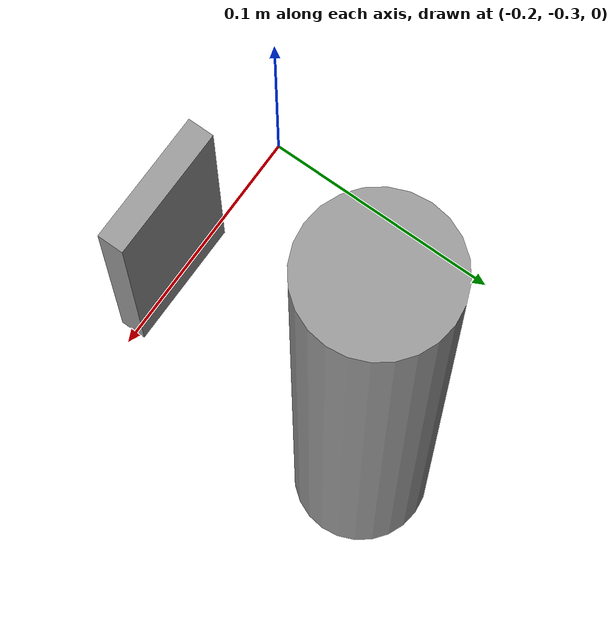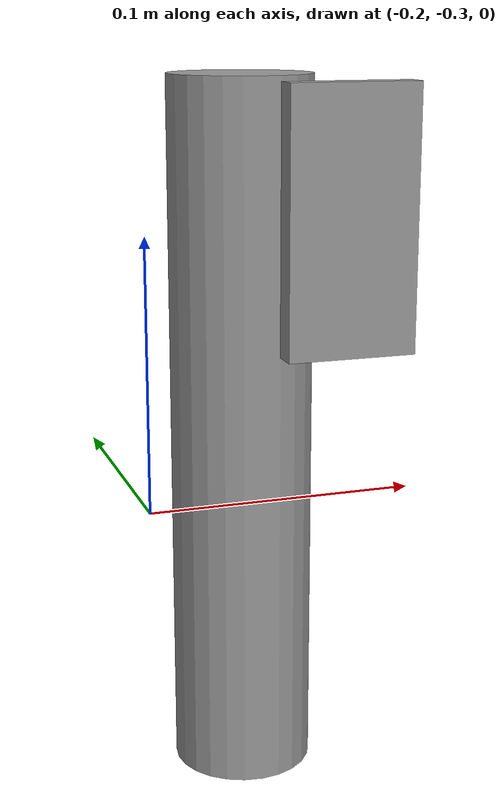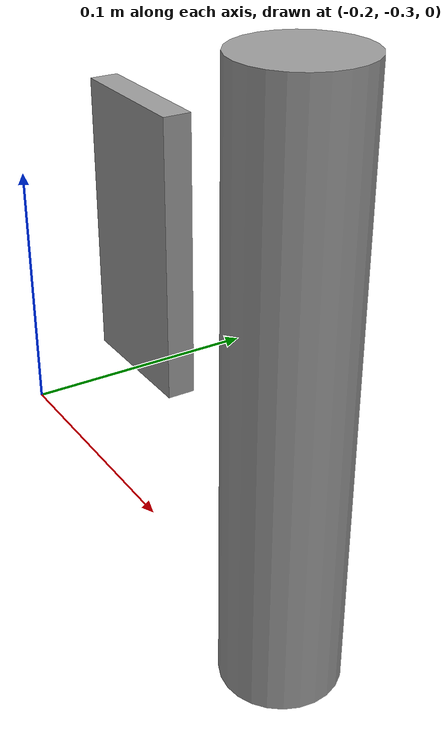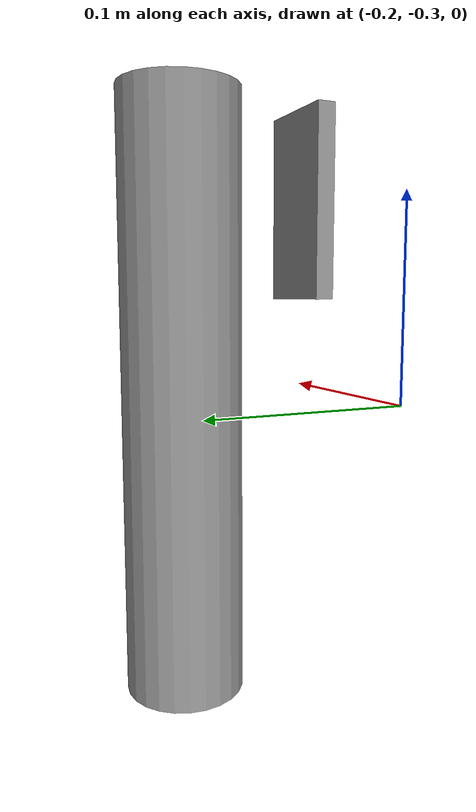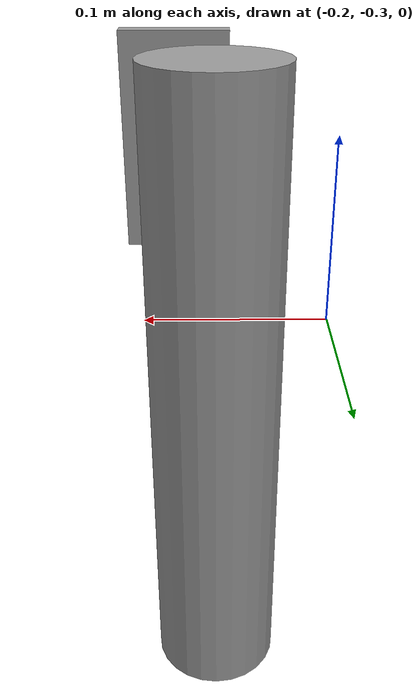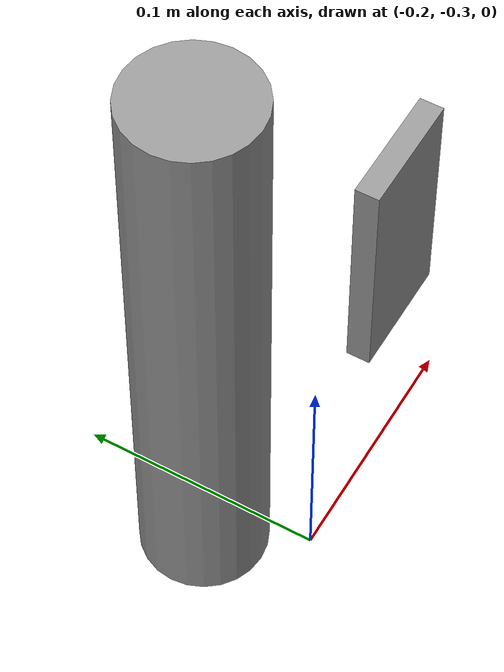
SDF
<?xml version='1.0'?>
<sdf version='1.7'>
  <model name='beacon'>
    <link name='link'>
      <inertial>
        <mass>0.04</mass>
        <inertia>
          <ixx>0.00583333</ixx>
          <ixy>0</ixy>
          <ixz>0</ixz>
          <iyy>0.00583333</iyy>
          <iyz>0</iyz>
          <izz>0.005</izz>
        </inertia>
        <pose>0 0 0 0 -0 0</pose>
      </inertial>
      <self_collide>0</self_collide>
      <enable_wind>0</enable_wind>
      <kinematic>0</kinematic>
      <pose>-0.138305 -0.212591 0 0 -0 0</pose>
      <gravity>1</gravity>
      <visual name='visual'>
        <geometry>
          <cylinder>
            <radius>0.03</radius>
            <length>0.3</length>
          </cylinder>
        </geometry>
        <material>
          <script>
            <name>Gazebo/Grey</name>
            <uri>file://media/materials/scripts/gazebo.material</uri>
          </script>
          <shader type='pixel'>
            <normal_map>__default__</normal_map>
          </shader>
          <ambient>0.3 0.3 0.3 1</ambient>
          <diffuse>0.7 0.7 0.7 1</diffuse>
          <specular>0.01 0.01 0.01 1</specular>
          <emissive>0 0 0 1</emissive>
        </material>
        <pose>0 0 0 0 -0 0</pose>
        <transparency>0</transparency>
        <cast_shadows>1</cast_shadows>
      </visual>
      <collision name='collision'>
        <laser_retro>0</laser_retro>
        <max_contacts>10</max_contacts>
        <pose>0 0 0 0 -0 0</pose>
        <geometry>
          <cylinder>
            <radius>0.5</radius>
            <length>1</length>
          </cylinder>
        </geometry>
        <surface>
          <friction>
            <ode>
              <mu>1</mu>
              <mu2>1</mu2>
              <fdir1>0 0 0</fdir1>
              <slip1>0</slip1>
              <slip2>0</slip2>
            </ode>
            <torsional>
              <coefficient>1</coefficient>
              <patch_radius>0</patch_radius>
              <surface_radius>0</surface_radius>
              <use_patch_radius>1</use_patch_radius>
              <ode>
                <slip>0</slip>
              </ode>
            </torsional>
          </friction>
          <bounce>
            <restitution_coefficient>0</restitution_coefficient>
            <threshold>1e+06</threshold>
          </bounce>
          <contact>
            <collide_without_contact>0</collide_without_contact>
            <collide_without_contact_bitmask>1</collide_without_contact_bitmask>
            <collide_bitmask>1</collide_bitmask>
            <ode>
              <soft_cfm>0</soft_cfm>
              <soft_erp>0.2</soft_erp>
              <kp>1e+13</kp>
              <kd>1</kd>
              <max_vel>0.01</max_vel>
              <min_depth>0</min_depth>
            </ode>
            <bullet>
              <split_impulse>1</split_impulse>
              <split_impulse_penetration_threshold>-0.01</split_impulse_penetration_threshold>
              <soft_cfm>0</soft_cfm>
              <soft_erp>0.2</soft_erp>
              <kp>1e+13</kp>
              <kd>1</kd>
            </bullet>
          </contact>
        </surface>
      </collision>
    </link>
    <link name='link_1'>
      <inertial>
        <mass>1</mass>
        <inertia>
          <ixx>0.166667</ixx>
          <ixy>0</ixy>
          <ixz>0</ixz>
          <iyy>0.166667</iyy>
          <iyz>0</iyz>
          <izz>0.166667</izz>
        </inertia>
        <pose>0 0 0 0 -0 0</pose>
      </inertial>
      <pose>-0.120568 -0.289608 0.080004 -3e-06 -4e-06 -0</pose>
      <gravity>1</gravity>
      <self_collide>0</self_collide>
      <kinematic>0</kinematic>
      <enable_wind>0</enable_wind>
      <visual name='visual'>
        <pose>0 0 0.02 0 -0 0</pose>
        <geometry>
          <box>
            <size>0.05 0.01 0.1</size>
          </box>
        </geometry>
        <material>
          <lighting>1</lighting>
          <script>
            <uri>file://media/materials/scripts/gazebo.material</uri>
            <name>Gazebo/Grey</name>
          </script>
          <shader type='pixel'>
            <normal_map>__default__</normal_map>
          </shader>
          <ambient>0.3 0.3 0.3 1</ambient>
          <diffuse>0.7 0.7 0.7 1</diffuse>
          <specular>0.01 0.01 0.01 1</specular>
          <emissive>0 0 0 1</emissive>
        </material>
        <transparency>0</transparency>
        <cast_shadows>1</cast_shadows>
      </visual>
      <collision name='collision'>
        <laser_retro>0</laser_retro>
        <max_contacts>10</max_contacts>
        <pose>0 0 0 0 -0 0</pose>
        <geometry>
          <box>
            <size>1 1 1</size>
          </box>
        </geometry>
        <surface>
          <friction>
            <ode>
              <mu>1</mu>
              <mu2>1</mu2>
              <fdir1>0 0 0</fdir1>
              <slip1>0</slip1>
              <slip2>0</slip2>
            </ode>
            <torsional>
              <coefficient>1</coefficient>
              <patch_radius>0</patch_radius>
              <surface_radius>0</surface_radius>
              <use_patch_radius>1</use_patch_radius>
              <ode>
                <slip>0</slip>
              </ode>
            </torsional>
          </friction>
          <bounce>
            <restitution_coefficient>0</restitution_coefficient>
            <threshold>1e+06</threshold>
          </bounce>
          <contact>
            <collide_without_contact>0</collide_without_contact>
            <collide_without_contact_bitmask>1</collide_without_contact_bitmask>
            <collide_bitmask>1</collide_bitmask>
            <ode>
              <soft_cfm>0</soft_cfm>
              <soft_erp>0.2</soft_erp>
              <kp>1e+13</kp>
              <kd>1</kd>
              <max_vel>0.01</max_vel>
              <min_depth>0</min_depth>
            </ode>
            <bullet>
              <split_impulse>1</split_impulse>
              <split_impulse_penetration_threshold>-0.01</split_impulse_penetration_threshold>
              <soft_cfm>0</soft_cfm>
              <soft_erp>0.2</soft_erp>
              <kp>1e+13</kp>
              <kd>1</kd>
            </bullet>
          </contact>
        </surface>
      </collision>
    </link>
    <static>0</static>
    <allow_auto_disable>1</allow_auto_disable>
  </model>
</sdf>
